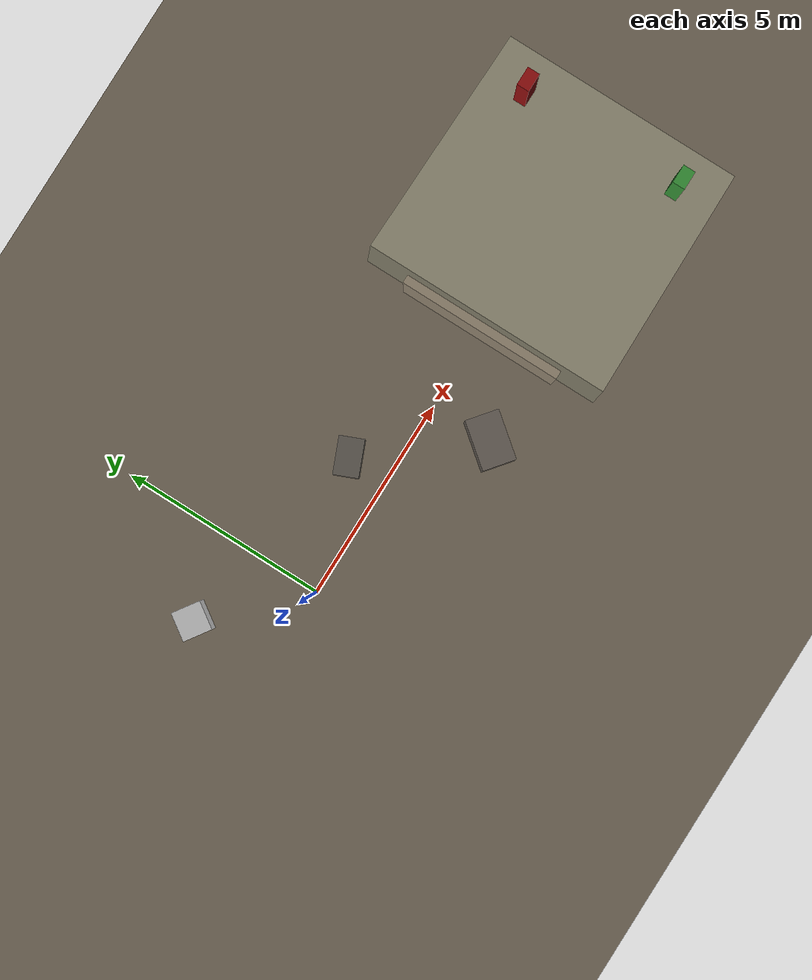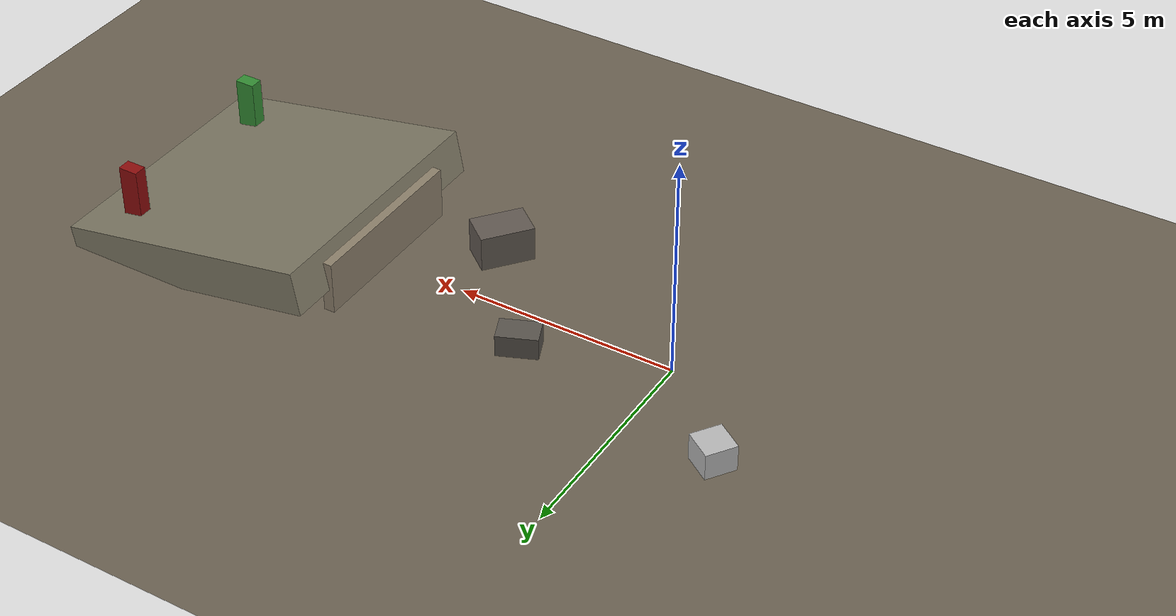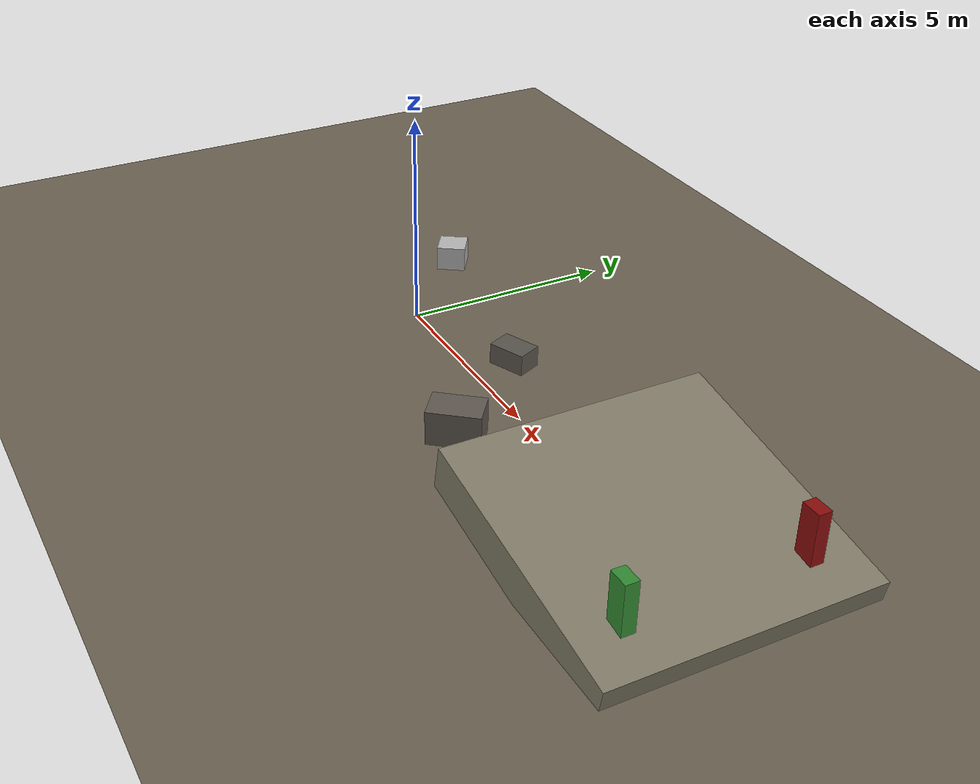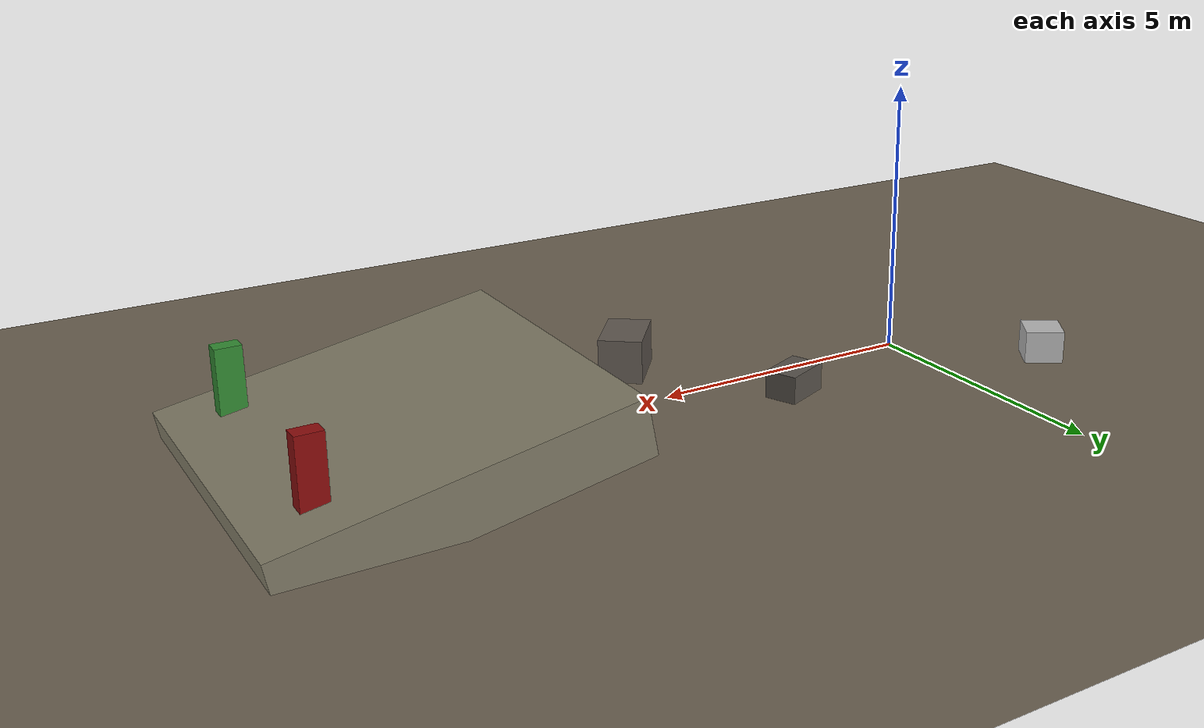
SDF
<?xml version="1.0" ?>
<sdf version="1.11">
  <world name="battlefield_rubble">
    <physics name="1ms" type="ignored"><max_step_size>0.001</max_step_size><real_time_factor>0.8</real_time_factor></physics>
    <plugin filename="gz-sim-physics-system" name="gz::sim::systems::Physics"/>
    <plugin filename="gz-sim-scene-broadcaster-system" name="gz::sim::systems::SceneBroadcaster"/>
    <plugin filename="gz-sim-user-commands-system" name="gz::sim::systems::UserCommands"/>
    <plugin filename="gz-sim-sensors-system" name="gz::sim::systems::Sensors"><render_engine>ogre2</render_engine></plugin>
    <light type="directional" name="sun"><cast_shadows>true</cast_shadows><pose>0 0 10 0 0 0</pose><diffuse>0.9 0.85 0.8 1</diffuse><direction>-0.5 0.1 -0.9</direction></light>
    <model name="ground_plane"><static>true</static><link name="link"><collision name="collision"><geometry><plane><normal>0 0 1</normal><size>200 200</size></plane></geometry></collision><visual name="visual"><geometry><plane><normal>0 0 1</normal><size>200 200</size></plane></geometry><material><ambient>0.42 0.38 0.32 1</ambient><diffuse>0.42 0.38 0.32 1</diffuse></material></visual></link></model>
    <!-- Rubble obstacles: crates + barriers + crater rims — fall-risk terrain goal.md:73 -->
    <model name="rubble_1"><pose>3 1 0.25 0 0 0.4</pose><static>true</static><link name="link"><collision name="c"><geometry><box><size>0.9 0.6 0.5</size></box></geometry></collision><visual name="v"><geometry><box><size>0.9 0.6 0.5</size></box></geometry><material><diffuse>0.35 0.33 0.30 1</diffuse></material></visual></link></model>
    <model name="rubble_2"><pose>5 -1.5 0.4 0 0 0.9</pose><static>true</static><link name="link"><collision name="c"><geometry><box><size>1.2 0.8 0.8</size></box></geometry></collision><visual name="v"><geometry><box><size>1.2 0.8 0.8</size></box></geometry><material><diffuse>0.38 0.35 0.32 1</diffuse></material></visual></link></model>
    <model name="rubble_3"><pose>-2 2 0.3 0 0 -0.6</pose><static>true</static><link name="link"><collision name="c"><geometry><box><size>0.7 0.7 0.6</size></box></geometry></collision><visual name="v"><geometry><box><size>0.7 0.7 0.6</size></box></geometry></visual></link></model>
    <model name="barrier"><pose>7 0 0.6 0 0 1.57</pose><static>true</static><link name="link"><collision name="c"><geometry><box><size>4 0.25 1.2</size></box></geometry></collision><visual name="v"><geometry><box><size>4 0.25 1.2</size></box></geometry><material><diffuse>0.55 0.50 0.42 1</diffuse></material></visual></link></model>
    <model name="slope"><pose>10 0 0.5 0 0.18 0</pose><static>true</static><link name="link"><collision name="c"><geometry><box><size>6 6 1.0</size></box></geometry></collision><visual name="v"><geometry><box><size>6 6 1.0</size></box></geometry><material><diffuse>0.50 0.48 0.40 1</diffuse></material></visual></link></model>
    <model name="crater"><pose>-5 -3  -0.2 0 0 0</pose><static>true</static><link name="link"><collision name="c"><geometry><cylinder><radius>1.8</radius><length>0.15</length></cylinder></geometry></collision><visual name="v"><geometry><cylinder><radius>1.8</radius><length>0.15</length></cylinder></geometry><material><diffuse>0.28 0.26 0.24 1</diffuse></material></visual></link></model>
    <!-- Friendly / civilian / threat dummies for YOLO eval -->
    <model name="threat_dummy"><pose>12 2 0.9 0 0 0</pose><static>true</static><link name="link"><visual name="v"><geometry><box><size>0.45 0.30 1.75</size></box></geometry><material><diffuse>0.55 0.05 0.05 1</diffuse></material></visual></link></model>
    <model name="civilian_dummy"><pose>12 -2 0.9 0 0 0</pose><static>true</static><link name="link"><visual name="v"><geometry><box><size>0.45 0.30 1.70</size></box></geometry><material><diffuse>0.20 0.55 0.20 1</diffuse></material></visual></link></model>
  </world>
</sdf>
